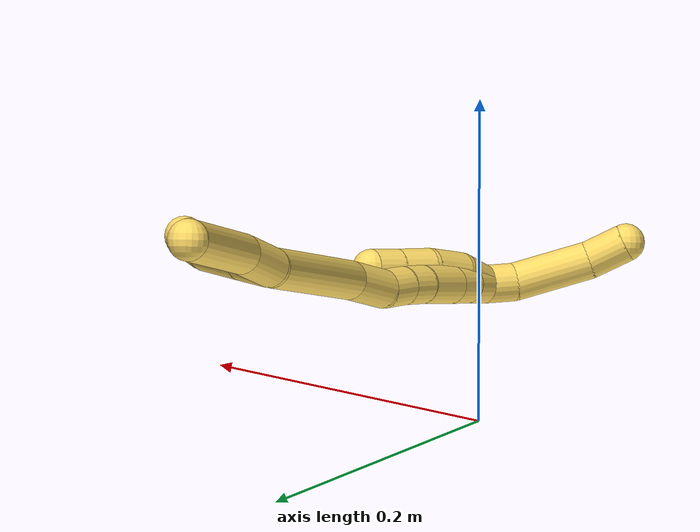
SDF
<sdf version="1.7">
 <world name="default">
  <model name="photoneo_s_sensor">
   <static>1</static>
   <pose>0 0 2 1.57079 1.57079 3.14159</pose>
   <link name="link">
    <inertial><mass>0.1</mass></inertial>
    <sensor name="sensor" type="depth">
     <update_rate>30</update_rate>
     <camera>
      <horizontal_fov>1.22</horizontal_fov>
      <image><width>1920</width><height>1200</height><format>B8G8R8</format></image>
      <clip><near>0.1</near><far>4</far></clip>
      <depth_camera><output>points</output></depth_camera>
     </camera>
     <plugin name="camera_plugin" filename="libgazebo_ros_depth_camera.so">
      <baseline>0.2</baseline>
      <alwaysOn>1</alwaysOn>
      <updateRate>0.0</updateRate>
      <cameraName>camera_ir</cameraName>
      <imageTopicName>/camera/color/image_raw</imageTopicName>
      <cameraInfoTopicName>/camera/color/camera_info</cameraInfoTopicName>
      <depthImageTopicName>/camera/depth/image_raw</depthImageTopicName>
      <depthImageCameraInfoTopicName>/camera/depth/camera_info</depthImageCameraInfoTopicName>
      <pointCloudTopicName>/camera/depth/points</pointCloudTopicName>
      <frameName>fr_optical</frameName>
      <pointCloudCutoff>0.1</pointCloudCutoff>
      <pointCloudCutoffMax>2.0</pointCloudCutoffMax>
      <distortionK1>0</distortionK1>
      <distortionK2>0</distortionK2>
      <distortionK3>0</distortionK3>
      <distortionT1>0</distortionT1>
      <distortionT2>0</distortionT2>
      <CxPrime>0</CxPrime>
      <Cx>0</Cx>
      <Cy>0</Cy>
      <focalLength>0</focalLength>
      <hackBaseline>0</hackBaseline>
     </plugin>
    </sensor>
   </link>
  </model>
  <model name="bin">
   <static>1</static>
   <link name="bottom">
    <collision name="collision-bottom">
     <pose>0 0 -0.01 0 -0 0</pose>
     <geometry><box><size>0.8 0.6 0.02</size></box></geometry>
     <surface>
      <friction><ode><mu>100</mu><mu2>100</mu2></ode></friction>
      <contact><collide_bitmask>65535</collide_bitmask></contact>
     </surface>
    </collision>
   </link>
   <link name="west_wall">
    <collision name="collision-west_wall">
     <pose>-0.41 0 0.1 0 -0 0</pose>
     <geometry><box><size>0.02 0.6 0.2</size></box></geometry>
     <surface>
      <friction><ode><mu>100</mu><mu2>100</mu2></ode></friction>
      <contact><collide_bitmask>65535</collide_bitmask></contact>
     </surface>
    </collision>
   </link>
   <link name="east_wall">
    <collision name="collision-east_wall">
     <pose>0.41 0 0.1 0 -0 0</pose>
     <geometry><box><size>0.02 0.6 0.2</size></box></geometry>
     <surface>
      <friction><ode><mu>100</mu><mu2>100</mu2></ode></friction>
      <contact><collide_bitmask>65535</collide_bitmask></contact>
     </surface>
    </collision>
   </link>
   <link name="south_wall">
    <collision name="collision-south_wall">
     <pose>0 -0.31 0.1 0 -0 0</pose>
     <geometry><box><size>0.8 0.02 0.2</size></box></geometry>
     <surface>
      <friction><ode><mu>100</mu><mu2>100</mu2></ode></friction>
      <contact><collide_bitmask>65535</collide_bitmask></contact>
     </surface>
    </collision>
   </link>
   <link name="north_wall">
    <collision name="collision-north_wall">
     <pose>0 0.31 0.1 0 -0 0</pose>
     <geometry><box><size>0.8 0.02 0.2</size></box></geometry>
     <surface>
      <friction><ode><mu>100</mu><mu2>100</mu2></ode></friction>
      <contact><collide_bitmask>65535</collide_bitmask></contact>
     </surface>
    </collision>
   </link>
  </model>
  <model name="5">
   <static>0</static>
   <link name="5">
    <collision name="collision-cylinder-e_1_2_8">
     <pose>-0.001874 0.017277 -0.003878 -1.79162 -0.105443 0.131669</pose>
     <geometry><cylinder><radius>0.0125</radius><length>0.035611</length></cylinder></geometry>
     <surface>
      <friction><ode><mu>1.16</mu><mu2>1.16</mu2><slip1>0</slip1><slip2>0</slip2></ode></friction>
      <contact><ode><kp>1e+06</kp><kd>1</kd><max_vel>0</max_vel><min_depth>0.001</min_depth></ode></contact>
     </surface>
    </collision>
    <visual name="visual-cylinder-e_1_2_8">
     <pose>-0.001874 0.017277 -0.003878 -1.79162 -0.105443 0.131669</pose>
     <geometry><cylinder><radius>0.0125</radius><length>0.035611</length></cylinder></geometry>
     <material><ambient>1 0.858824 0.4 1</ambient></material>
    </visual>
    <collision name="collision-cylinder-e_2_8_6">
     <pose>0.005883 0.090833 -0.011083 -1.62982 0.169197 -0.179437</pose>
     <geometry><cylinder><radius>0.0125</radius><length>0.114389</length></cylinder></geometry>
     <surface>
      <friction><ode><mu>1.16</mu><mu2>1.16</mu2><slip1>0</slip1><slip2>0</slip2></ode></friction>
      <contact><ode><kp>1e+06</kp><kd>1</kd><max_vel>0</max_vel><min_depth>0.001</min_depth></ode></contact>
     </surface>
    </collision>
    <visual name="visual-cylinder-e_2_8_6">
     <pose>0.005883 0.090833 -0.011083 -1.62982 0.169197 -0.179437</pose>
     <geometry><cylinder><radius>0.0125</radius><length>0.114389</length></cylinder></geometry>
     <material><ambient>1 0.858824 0.4 1</ambient></material>
    </visual>
    <collision name="collision-cylinder-e_1_2_9">
     <pose>-0.013783 -0.00959 -0.001881 1.76449 -0.954014 -1.12156</pose>
     <geometry><cylinder><radius>0.0125</radius><length>0.033792</length></cylinder></geometry>
     <surface>
      <friction><ode><mu>1.16</mu><mu2>1.16</mu2><slip1>0</slip1><slip2>0</slip2></ode></friction>
      <contact><ode><kp>1e+06</kp><kd>1</kd><max_vel>0</max_vel><min_depth>0.001</min_depth></ode></contact>
     </surface>
    </collision>
    <visual name="visual-cylinder-e_1_2_9">
     <pose>-0.013783 -0.00959 -0.001881 1.76449 -0.954014 -1.12156</pose>
     <geometry><cylinder><radius>0.0125</radius><length>0.033792</length></cylinder></geometry>
     <material><ambient>1 0.858824 0.4 1</ambient></material>
    </visual>
    <collision name="collision-cylinder-e_2_9_10">
     <pose>-0.04593 -0.030696 -0.006533 1.80688 -0.997969 -1.21019</pose>
     <geometry><cylinder><radius>0.0125</radius><length>0.043704</length></cylinder></geometry>
     <surface>
      <friction><ode><mu>1.16</mu><mu2>1.16</mu2><slip1>0</slip1><slip2>0</slip2></ode></friction>
      <contact><ode><kp>1e+06</kp><kd>1</kd><max_vel>0</max_vel><min_depth>0.001</min_depth></ode></contact>
     </surface>
    </collision>
    <visual name="visual-cylinder-e_2_9_10">
     <pose>-0.04593 -0.030696 -0.006533 1.80688 -0.997969 -1.21019</pose>
     <geometry><cylinder><radius>0.0125</radius><length>0.043704</length></cylinder></geometry>
     <material><ambient>1 0.858824 0.4 1</ambient></material>
    </visual>
    <collision name="collision-cylinder-e_3_10_5">
     <pose>-0.07375 -0.046293 -0.013833 2.40817 -0.998081 -1.91389</pose>
     <geometry><cylinder><radius>0.0125</radius><length>0.022504</length></cylinder></geometry>
     <surface>
      <friction><ode><mu>1.16</mu><mu2>1.16</mu2><slip1>0</slip1><slip2>0</slip2></ode></friction>
      <contact><ode><kp>1e+06</kp><kd>1</kd><max_vel>0</max_vel><min_depth>0.001</min_depth></ode></contact>
     </surface>
    </collision>
    <visual name="visual-cylinder-e_3_10_5">
     <pose>-0.07375 -0.046293 -0.013833 2.40817 -0.998081 -1.91389</pose>
     <geometry><cylinder><radius>0.0125</radius><length>0.022504</length></cylinder></geometry>
     <material><ambient>1 0.858824 0.4 1</ambient></material>
    </visual>
    <collision name="collision-cylinder-e_1_2_11">
     <pose>-0.006177 -0.071223 0.003193 1.52599 -0.086419 -0.082635</pose>
     <geometry><cylinder><radius>0.0125</radius><length>0.143122</length></cylinder></geometry>
     <surface>
      <friction><ode><mu>1.16</mu><mu2>1.16</mu2><slip1>0</slip1><slip2>0</slip2></ode></friction>
      <contact><ode><kp>1e+06</kp><kd>1</kd><max_vel>0</max_vel><min_depth>0.001</min_depth></ode></contact>
     </surface>
    </collision>
    <visual name="visual-cylinder-e_1_2_11">
     <pose>-0.006177 -0.071223 0.003193 1.52599 -0.086419 -0.082635</pose>
     <geometry><cylinder><radius>0.0125</radius><length>0.143122</length></cylinder></geometry>
     <material><ambient>1 0.858824 0.4 1</ambient></material>
    </visual>
    <collision name="collision-cylinder-e_2_11_12">
     <pose>-0.008265 -0.159995 0.008976 1.42429 0.226507 0.195749</pose>
     <geometry><cylinder><radius>0.0125</radius><length>0.03641</length></cylinder></geometry>
     <surface>
      <friction><ode><mu>1.16</mu><mu2>1.16</mu2><slip1>0</slip1><slip2>0</slip2></ode></friction>
      <contact><ode><kp>1e+06</kp><kd>1</kd><max_vel>0</max_vel><min_depth>0.001</min_depth></ode></contact>
     </surface>
    </collision>
    <visual name="visual-cylinder-e_2_11_12">
     <pose>-0.008265 -0.159995 0.008976 1.42429 0.226507 0.195749</pose>
     <geometry><cylinder><radius>0.0125</radius><length>0.03641</length></cylinder></geometry>
     <material><ambient>1 0.858824 0.4 1</ambient></material>
    </visual>
    <collision name="collision-cylinder-e_3_12_13">
     <pose>-0.001772 -0.187863 0.010381 1.68507 0.227509 0.254831</pose>
     <geometry><cylinder><radius>0.0125</radius><length>0.021323</length></cylinder></geometry>
     <surface>
      <friction><ode><mu>1.16</mu><mu2>1.16</mu2><slip1>0</slip1><slip2>0</slip2></ode></friction>
      <contact><ode><kp>1e+06</kp><kd>1</kd><max_vel>0</max_vel><min_depth>0.001</min_depth></ode></contact>
     </surface>
    </collision>
    <visual name="visual-cylinder-e_3_12_13">
     <pose>-0.001772 -0.187863 0.010381 1.68507 0.227509 0.254831</pose>
     <geometry><cylinder><radius>0.0125</radius><length>0.021323</length></cylinder></geometry>
     <material><ambient>1 0.858824 0.4 1</ambient></material>
    </visual>
    <collision name="collision-cylinder-e_4_13_14">
     <pose>0.002902 -0.208136 0.008668 1.62388 0.223787 0.235884</pose>
     <geometry><cylinder><radius>0.0125</radius><length>0.020444</length></cylinder></geometry>
     <surface>
      <friction><ode><mu>1.16</mu><mu2>1.16</mu2><slip1>0</slip1><slip2>0</slip2></ode></friction>
      <contact><ode><kp>1e+06</kp><kd>1</kd><max_vel>0</max_vel><min_depth>0.001</min_depth></ode></contact>
     </surface>
    </collision>
    <visual name="visual-cylinder-e_4_13_14">
     <pose>0.002902 -0.208136 0.008668 1.62388 0.223787 0.235884</pose>
     <geometry><cylinder><radius>0.0125</radius><length>0.020444</length></cylinder></geometry>
     <material><ambient>1 0.858824 0.4 1</ambient></material>
    </visual>
    <collision name="collision-cylinder-e_5_14_15">
     <pose>0.007573 -0.235555 0.007921 1.58326 0.136719 0.138429</pose>
     <geometry><cylinder><radius>0.0125</radius><length>0.035264</length></cylinder></geometry>
     <surface>
      <friction><ode><mu>1.16</mu><mu2>1.16</mu2><slip1>0</slip1><slip2>0</slip2></ode></friction>
      <contact><ode><kp>1e+06</kp><kd>1</kd><max_vel>0</max_vel><min_depth>0.001</min_depth></ode></contact>
     </surface>
    </collision>
    <visual name="visual-cylinder-e_5_14_15">
     <pose>0.007573 -0.235555 0.007921 1.58326 0.136719 0.138429</pose>
     <geometry><cylinder><radius>0.0125</radius><length>0.035264</length></cylinder></geometry>
     <material><ambient>1 0.858824 0.4 1</ambient></material>
    </visual>
    <collision name="collision-cylinder-e_6_15_16">
     <pose>0.011392 -0.263422 0.007497 1.59065 0.135292 0.137996</pose>
     <geometry><cylinder><radius>0.0125</radius><length>0.020998</length></cylinder></geometry>
     <surface>
      <friction><ode><mu>1.16</mu><mu2>1.16</mu2><slip1>0</slip1><slip2>0</slip2></ode></friction>
      <contact><ode><kp>1e+06</kp><kd>1</kd><max_vel>0</max_vel><min_depth>0.001</min_depth></ode></contact>
     </surface>
    </collision>
    <visual name="visual-cylinder-e_6_15_16">
     <pose>0.011392 -0.263422 0.007497 1.59065 0.135292 0.137996</pose>
     <geometry><cylinder><radius>0.0125</radius><length>0.020998</length></cylinder></geometry>
     <material><ambient>1 0.858824 0.4 1</ambient></material>
    </visual>
    <collision name="collision-cylinder-e_7_16_1">
     <pose>0.013925 -0.284987 0.007226 1.57656 0.099663 0.100238</pose>
     <geometry><cylinder><radius>0.0125</radius><length>0.022439</length></cylinder></geometry>
     <surface>
      <friction><ode><mu>1.16</mu><mu2>1.16</mu2><slip1>0</slip1><slip2>0</slip2></ode></friction>
      <contact><ode><kp>1e+06</kp><kd>1</kd><max_vel>0</max_vel><min_depth>0.001</min_depth></ode></contact>
     </surface>
    </collision>
    <visual name="visual-cylinder-e_7_16_1">
     <pose>0.013925 -0.284987 0.007226 1.57656 0.099663 0.100238</pose>
     <geometry><cylinder><radius>0.0125</radius><length>0.022439</length></cylinder></geometry>
     <material><ambient>1 0.858824 0.4 1</ambient></material>
    </visual>
    <collision name="collision-cylinder-e_1_1_17">
     <pose>0.012126 -0.283238 0.003156 -1.87163 -0.212356 0.287319</pose>
     <geometry><cylinder><radius>0.0125</radius><length>0.02766</length></cylinder></geometry>
     <surface>
      <friction><ode><mu>1.16</mu><mu2>1.16</mu2><slip1>0</slip1><slip2>0</slip2></ode></friction>
      <contact><ode><kp>1e+06</kp><kd>1</kd><max_vel>0</max_vel><min_depth>0.001</min_depth></ode></contact>
     </surface>
    </collision>
    <visual name="visual-cylinder-e_1_1_17">
     <pose>0.012126 -0.283238 0.003156 -1.87163 -0.212356 0.287319</pose>
     <geometry><cylinder><radius>0.0125</radius><length>0.02766</length></cylinder></geometry>
     <material><ambient>1 0.858824 0.4 1</ambient></material>
    </visual>
    <collision name="collision-cylinder-e_2_17_18">
     <pose>0.003783 -0.257316 -0.001971 -1.65673 -0.393959 0.428327</pose>
     <geometry><cylinder><radius>0.0125</radius><length>0.028283</length></cylinder></geometry>
     <surface>
      <friction><ode><mu>1.16</mu><mu2>1.16</mu2><slip1>0</slip1><slip2>0</slip2></ode></friction>
      <contact><ode><kp>1e+06</kp><kd>1</kd><max_vel>0</max_vel><min_depth>0.001</min_depth></ode></contact>
     </surface>
    </collision>
    <visual name="visual-cylinder-e_2_17_18">
     <pose>0.003783 -0.257316 -0.001971 -1.65673 -0.393959 0.428327</pose>
     <geometry><cylinder><radius>0.0125</radius><length>0.028283</length></cylinder></geometry>
     <material><ambient>1 0.858824 0.4 1</ambient></material>
    </visual>
    <collision name="collision-cylinder-e_3_18_19">
     <pose>-0.00834 -0.234369 -0.002534 -1.51469 -0.592158 0.56155</pose>
     <geometry><cylinder><radius>0.0125</radius><length>0.023989</length></cylinder></geometry>
     <surface>
      <friction><ode><mu>1.16</mu><mu2>1.16</mu2><slip1>0</slip1><slip2>0</slip2></ode></friction>
      <contact><ode><kp>1e+06</kp><kd>1</kd><max_vel>0</max_vel><min_depth>0.001</min_depth></ode></contact>
     </surface>
    </collision>
    <visual name="visual-cylinder-e_3_18_19">
     <pose>-0.00834 -0.234369 -0.002534 -1.51469 -0.592158 0.56155</pose>
     <geometry><cylinder><radius>0.0125</radius><length>0.023989</length></cylinder></geometry>
     <material><ambient>1 0.858824 0.4 1</ambient></material>
    </visual>
    <collision name="collision-cylinder-e_4_19_4">
     <pose>-0.020516 -0.216032 -0.001717 -1.54008 -0.577972 0.561405</pose>
     <geometry><cylinder><radius>0.0125</radius><length>0.020067</length></cylinder></geometry>
     <surface>
      <friction><ode><mu>1.16</mu><mu2>1.16</mu2><slip1>0</slip1><slip2>0</slip2></ode></friction>
      <contact><ode><kp>1e+06</kp><kd>1</kd><max_vel>0</max_vel><min_depth>0.001</min_depth></ode></contact>
     </surface>
    </collision>
    <visual name="visual-cylinder-e_4_19_4">
     <pose>-0.020516 -0.216032 -0.001717 -1.54008 -0.577972 0.561405</pose>
     <geometry><cylinder><radius>0.0125</radius><length>0.020067</length></cylinder></geometry>
     <material><ambient>1 0.858824 0.4 1</ambient></material>
    </visual>
    <collision name="collision-cylinder-e_1_1_20">
     <pose>0.022979 -0.303001 0.00615 1.7174 0.853454 0.969612</pose>
     <geometry><cylinder><radius>0.0125</radius><length>0.021067</length></cylinder></geometry>
     <surface>
      <friction><ode><mu>1.16</mu><mu2>1.16</mu2><slip1>0</slip1><slip2>0</slip2></ode></friction>
      <contact><ode><kp>1e+06</kp><kd>1</kd><max_vel>0</max_vel><min_depth>0.001</min_depth></ode></contact>
     </surface>
    </collision>
    <visual name="visual-cylinder-e_1_1_20">
     <pose>0.022979 -0.303001 0.00615 1.7174 0.853454 0.969612</pose>
     <geometry><cylinder><radius>0.0125</radius><length>0.021067</length></cylinder></geometry>
     <material><ambient>1 0.858824 0.4 1</ambient></material>
    </visual>
    <collision name="collision-cylinder-e_2_20_21">
     <pose>0.051998 -0.322754 -0.00261 2.11164 0.950772 1.4762</pose>
     <geometry><cylinder><radius>0.0125</radius><length>0.051806</length></cylinder></geometry>
     <surface>
      <friction><ode><mu>1.16</mu><mu2>1.16</mu2><slip1>0</slip1><slip2>0</slip2></ode></friction>
      <contact><ode><kp>1e+06</kp><kd>1</kd><max_vel>0</max_vel><min_depth>0.001</min_depth></ode></contact>
     </surface>
    </collision>
    <visual name="visual-cylinder-e_2_20_21">
     <pose>0.051998 -0.322754 -0.00261 2.11164 0.950772 1.4762</pose>
     <geometry><cylinder><radius>0.0125</radius><length>0.051806</length></cylinder></geometry>
     <material><ambient>1 0.858824 0.4 1</ambient></material>
    </visual>
    <collision name="collision-cylinder-e_3_21_3">
     <pose>0.084901 -0.338402 -0.016416 2.71598 1.05838 2.43376</pose>
     <geometry><cylinder><radius>0.0125</radius><length>0.027127</length></cylinder></geometry>
     <surface>
      <friction><ode><mu>1.16</mu><mu2>1.16</mu2><slip1>0</slip1><slip2>0</slip2></ode></friction>
      <contact><ode><kp>1e+06</kp><kd>1</kd><max_vel>0</max_vel><min_depth>0.001</min_depth></ode></contact>
     </surface>
    </collision>
    <visual name="visual-cylinder-e_3_21_3">
     <pose>0.084901 -0.338402 -0.016416 2.71598 1.05838 2.43376</pose>
     <geometry><cylinder><radius>0.0125</radius><length>0.027127</length></cylinder></geometry>
     <material><ambient>1 0.858824 0.4 1</ambient></material>
    </visual>
    <collision name="collision-sphere-3">
     <pose>0.096722 -0.341148 -0.022473 0 -0 0</pose>
     <geometry><sphere><radius>0.0125</radius></sphere></geometry>
     <surface>
      <friction><ode><mu>1.16</mu><mu2>1.16</mu2><slip1>0</slip1><slip2>0</slip2></ode></friction>
      <contact><ode><kp>1e+06</kp><kd>1</kd><max_vel>0</max_vel><min_depth>0.001</min_depth></ode></contact>
     </surface>
    </collision>
    <visual name="visual-sphere-3">
     <pose>0.096722 -0.341148 -0.022473 0 -0 0</pose>
     <geometry><sphere><radius>0.0125</radius></sphere></geometry>
     <material><ambient>1 0.858824 0.4 1</ambient></material>
    </visual>
    <collision name="collision-sphere-21">
     <pose>0.073079 -0.335657 -0.010359 0 -0 0</pose>
     <geometry><sphere><radius>0.0125</radius></sphere></geometry>
     <surface>
      <friction><ode><mu>1.16</mu><mu2>1.16</mu2><slip1>0</slip1><slip2>0</slip2></ode></friction>
      <contact><ode><kp>1e+06</kp><kd>1</kd><max_vel>0</max_vel><min_depth>0.001</min_depth></ode></contact>
     </surface>
    </collision>
    <visual name="visual-sphere-21">
     <pose>0.073079 -0.335657 -0.010359 0 -0 0</pose>
     <geometry><sphere><radius>0.0125</radius></sphere></geometry>
     <material><ambient>1 0.858824 0.4 1</ambient></material>
    </visual>
    <collision name="collision-sphere-20">
     <pose>0.030916 -0.309851 0.005139 0 -0 0</pose>
     <geometry><sphere><radius>0.0125</radius></sphere></geometry>
     <surface>
      <friction><ode><mu>1.16</mu><mu2>1.16</mu2><slip1>0</slip1><slip2>0</slip2></ode></friction>
      <contact><ode><kp>1e+06</kp><kd>1</kd><max_vel>0</max_vel><min_depth>0.001</min_depth></ode></contact>
     </surface>
    </collision>
    <visual name="visual-sphere-20">
     <pose>0.030916 -0.309851 0.005139 0 -0 0</pose>
     <geometry><sphere><radius>0.0125</radius></sphere></geometry>
     <material><ambient>1 0.858824 0.4 1</ambient></material>
    </visual>
    <collision name="collision-sphere-4">
     <pose>-0.025998 -0.207632 -0.001459 0 -0 0</pose>
     <geometry><sphere><radius>0.0125</radius></sphere></geometry>
     <surface>
      <friction><ode><mu>1.16</mu><mu2>1.16</mu2><slip1>0</slip1><slip2>0</slip2></ode></friction>
      <contact><ode><kp>1e+06</kp><kd>1</kd><max_vel>0</max_vel><min_depth>0.001</min_depth></ode></contact>
     </surface>
    </collision>
    <visual name="visual-sphere-4">
     <pose>-0.025998 -0.207632 -0.001459 0 -0 0</pose>
     <geometry><sphere><radius>0.0125</radius></sphere></geometry>
     <material><ambient>1 0.858824 0.4 1</ambient></material>
    </visual>
    <collision name="collision-sphere-5">
     <pose>-0.083206 -0.050375 -0.018363 0 -0 0</pose>
     <geometry><sphere><radius>0.0125</radius></sphere></geometry>
     <surface>
      <friction><ode><mu>1.16</mu><mu2>1.16</mu2><slip1>0</slip1><slip2>0</slip2></ode></friction>
      <contact><ode><kp>1e+06</kp><kd>1</kd><max_vel>0</max_vel><min_depth>0.001</min_depth></ode></contact>
     </surface>
    </collision>
    <visual name="visual-sphere-5">
     <pose>-0.083206 -0.050375 -0.018363 0 -0 0</pose>
     <geometry><sphere><radius>0.0125</radius></sphere></geometry>
     <material><ambient>1 0.858824 0.4 1</ambient></material>
    </visual>
    <collision name="collision-sphere-10">
     <pose>-0.064293 -0.042211 -0.009303 0 -0 0</pose>
     <geometry><sphere><radius>0.0125</radius></sphere></geometry>
     <surface>
      <friction><ode><mu>1.16</mu><mu2>1.16</mu2><slip1>0</slip1><slip2>0</slip2></ode></friction>
      <contact><ode><kp>1e+06</kp><kd>1</kd><max_vel>0</max_vel><min_depth>0.001</min_depth></ode></contact>
     </surface>
    </collision>
    <visual name="visual-sphere-10">
     <pose>-0.064293 -0.042211 -0.009303 0 -0 0</pose>
     <geometry><sphere><radius>0.0125</radius></sphere></geometry>
     <material><ambient>1 0.858824 0.4 1</ambient></material>
    </visual>
    <collision name="collision-sphere-6">
     <pose>0.015514 0.147112 -0.014409 0 -0 0</pose>
     <geometry><sphere><radius>0.0125</radius></sphere></geometry>
     <surface>
      <friction><ode><mu>1.16</mu><mu2>1.16</mu2><slip1>0</slip1><slip2>0</slip2></ode></friction>
      <contact><ode><kp>1e+06</kp><kd>1</kd><max_vel>0</max_vel><min_depth>0.001</min_depth></ode></contact>
     </surface>
    </collision>
    <visual name="visual-sphere-6">
     <pose>0.015514 0.147112 -0.014409 0 -0 0</pose>
     <geometry><sphere><radius>0.0125</radius></sphere></geometry>
     <material><ambient>1 0.858824 0.4 1</ambient></material>
    </visual>
    <collision name="collision-sphere-9">
     <pose>-0.027566 -0.01918 -0.003762 0 -0 0</pose>
     <geometry><sphere><radius>0.0125</radius></sphere></geometry>
     <surface>
      <friction><ode><mu>1.16</mu><mu2>1.16</mu2><slip1>0</slip1><slip2>0</slip2></ode></friction>
      <contact><ode><kp>1e+06</kp><kd>1</kd><max_vel>0</max_vel><min_depth>0.001</min_depth></ode></contact>
     </surface>
    </collision>
    <visual name="visual-sphere-9">
     <pose>-0.027566 -0.01918 -0.003762 0 -0 0</pose>
     <geometry><sphere><radius>0.0125</radius></sphere></geometry>
     <material><ambient>1 0.858824 0.4 1</ambient></material>
    </visual>
    <collision name="collision-sphere-2">
     <geometry><sphere><radius>0.0125</radius></sphere></geometry>
     <surface>
      <friction><ode><mu>1.16</mu><mu2>1.16</mu2><slip1>0</slip1><slip2>0</slip2></ode></friction>
      <contact><ode><kp>1e+06</kp><kd>1</kd><max_vel>0</max_vel><min_depth>0.001</min_depth></ode></contact>
     </surface>
    </collision>
    <visual name="visual-sphere-2">
     <geometry><sphere><radius>0.0125</radius></sphere></geometry>
     <material><ambient>1 0.858824 0.4 1</ambient></material>
    </visual>
    <collision name="collision-sphere-19">
     <pose>-0.015035 -0.224432 -0.001975 0 -0 0</pose>
     <geometry><sphere><radius>0.0125</radius></sphere></geometry>
     <surface>
      <friction><ode><mu>1.16</mu><mu2>1.16</mu2><slip1>0</slip1><slip2>0</slip2></ode></friction>
      <contact><ode><kp>1e+06</kp><kd>1</kd><max_vel>0</max_vel><min_depth>0.001</min_depth></ode></contact>
     </surface>
    </collision>
    <visual name="visual-sphere-19">
     <pose>-0.015035 -0.224432 -0.001975 0 -0 0</pose>
     <geometry><sphere><radius>0.0125</radius></sphere></geometry>
     <material><ambient>1 0.858824 0.4 1</ambient></material>
    </visual>
    <collision name="collision-sphere-8">
     <pose>-0.003748 0.034553 -0.007757 0 -0 0</pose>
     <geometry><sphere><radius>0.0125</radius></sphere></geometry>
     <surface>
      <friction><ode><mu>1.16</mu><mu2>1.16</mu2><slip1>0</slip1><slip2>0</slip2></ode></friction>
      <contact><ode><kp>1e+06</kp><kd>1</kd><max_vel>0</max_vel><min_depth>0.001</min_depth></ode></contact>
     </surface>
    </collision>
    <visual name="visual-sphere-8">
     <pose>-0.003748 0.034553 -0.007757 0 -0 0</pose>
     <geometry><sphere><radius>0.0125</radius></sphere></geometry>
     <material><ambient>1 0.858824 0.4 1</ambient></material>
    </visual>
    <collision name="collision-sphere-11">
     <pose>-0.012353 -0.142445 0.006386 0 -0 0</pose>
     <geometry><sphere><radius>0.0125</radius></sphere></geometry>
     <surface>
      <friction><ode><mu>1.16</mu><mu2>1.16</mu2><slip1>0</slip1><slip2>0</slip2></ode></friction>
      <contact><ode><kp>1e+06</kp><kd>1</kd><max_vel>0</max_vel><min_depth>0.001</min_depth></ode></contact>
     </surface>
    </collision>
    <visual name="visual-sphere-11">
     <pose>-0.012353 -0.142445 0.006386 0 -0 0</pose>
     <geometry><sphere><radius>0.0125</radius></sphere></geometry>
     <material><ambient>1 0.858824 0.4 1</ambient></material>
    </visual>
    <collision name="collision-sphere-12">
     <pose>-0.004176 -0.177545 0.011565 0 -0 0</pose>
     <geometry><sphere><radius>0.0125</radius></sphere></geometry>
     <surface>
      <friction><ode><mu>1.16</mu><mu2>1.16</mu2><slip1>0</slip1><slip2>0</slip2></ode></friction>
      <contact><ode><kp>1e+06</kp><kd>1</kd><max_vel>0</max_vel><min_depth>0.001</min_depth></ode></contact>
     </surface>
    </collision>
    <visual name="visual-sphere-12">
     <pose>-0.004176 -0.177545 0.011565 0 -0 0</pose>
     <geometry><sphere><radius>0.0125</radius></sphere></geometry>
     <material><ambient>1 0.858824 0.4 1</ambient></material>
    </visual>
    <collision name="collision-sphere-13">
     <pose>0.000633 -0.198182 0.009197 0 -0 0</pose>
     <geometry><sphere><radius>0.0125</radius></sphere></geometry>
     <surface>
      <friction><ode><mu>1.16</mu><mu2>1.16</mu2><slip1>0</slip1><slip2>0</slip2></ode></friction>
      <contact><ode><kp>1e+06</kp><kd>1</kd><max_vel>0</max_vel><min_depth>0.001</min_depth></ode></contact>
     </surface>
    </collision>
    <visual name="visual-sphere-13">
     <pose>0.000633 -0.198182 0.009197 0 -0 0</pose>
     <geometry><sphere><radius>0.0125</radius></sphere></geometry>
     <material><ambient>1 0.858824 0.4 1</ambient></material>
    </visual>
    <collision name="collision-sphere-14">
     <pose>0.00517 -0.218089 0.008139 0 -0 0</pose>
     <geometry><sphere><radius>0.0125</radius></sphere></geometry>
     <surface>
      <friction><ode><mu>1.16</mu><mu2>1.16</mu2><slip1>0</slip1><slip2>0</slip2></ode></friction>
      <contact><ode><kp>1e+06</kp><kd>1</kd><max_vel>0</max_vel><min_depth>0.001</min_depth></ode></contact>
     </surface>
    </collision>
    <visual name="visual-sphere-14">
     <pose>0.00517 -0.218089 0.008139 0 -0 0</pose>
     <geometry><sphere><radius>0.0125</radius></sphere></geometry>
     <material><ambient>1 0.858824 0.4 1</ambient></material>
    </visual>
    <collision name="collision-sphere-15">
     <pose>0.009976 -0.253021 0.007704 0 -0 0</pose>
     <geometry><sphere><radius>0.0125</radius></sphere></geometry>
     <surface>
      <friction><ode><mu>1.16</mu><mu2>1.16</mu2><slip1>0</slip1><slip2>0</slip2></ode></friction>
      <contact><ode><kp>1e+06</kp><kd>1</kd><max_vel>0</max_vel><min_depth>0.001</min_depth></ode></contact>
     </surface>
    </collision>
    <visual name="visual-sphere-15">
     <pose>0.009976 -0.253021 0.007704 0 -0 0</pose>
     <geometry><sphere><radius>0.0125</radius></sphere></geometry>
     <material><ambient>1 0.858824 0.4 1</ambient></material>
    </visual>
    <collision name="collision-sphere-16">
     <pose>0.012809 -0.273823 0.007291 0 -0 0</pose>
     <geometry><sphere><radius>0.0125</radius></sphere></geometry>
     <surface>
      <friction><ode><mu>1.16</mu><mu2>1.16</mu2><slip1>0</slip1><slip2>0</slip2></ode></friction>
      <contact><ode><kp>1e+06</kp><kd>1</kd><max_vel>0</max_vel><min_depth>0.001</min_depth></ode></contact>
     </surface>
    </collision>
    <visual name="visual-sphere-16">
     <pose>0.012809 -0.273823 0.007291 0 -0 0</pose>
     <geometry><sphere><radius>0.0125</radius></sphere></geometry>
     <material><ambient>1 0.858824 0.4 1</ambient></material>
    </visual>
    <collision name="collision-sphere-1">
     <pose>0.015041 -0.29615 0.007162 0 -0 0</pose>
     <geometry><sphere><radius>0.0125</radius></sphere></geometry>
     <surface>
      <friction><ode><mu>1.16</mu><mu2>1.16</mu2><slip1>0</slip1><slip2>0</slip2></ode></friction>
      <contact><ode><kp>1e+06</kp><kd>1</kd><max_vel>0</max_vel><min_depth>0.001</min_depth></ode></contact>
     </surface>
    </collision>
    <visual name="visual-sphere-1">
     <pose>0.015041 -0.29615 0.007162 0 -0 0</pose>
     <geometry><sphere><radius>0.0125</radius></sphere></geometry>
     <material><ambient>1 0.858824 0.4 1</ambient></material>
    </visual>
    <collision name="collision-sphere-18">
     <pose>-0.001645 -0.244305 -0.003092 0 -0 0</pose>
     <geometry><sphere><radius>0.0125</radius></sphere></geometry>
     <surface>
      <friction><ode><mu>1.16</mu><mu2>1.16</mu2><slip1>0</slip1><slip2>0</slip2></ode></friction>
      <contact><ode><kp>1e+06</kp><kd>1</kd><max_vel>0</max_vel><min_depth>0.001</min_depth></ode></contact>
     </surface>
    </collision>
    <visual name="visual-sphere-18">
     <pose>-0.001645 -0.244305 -0.003092 0 -0 0</pose>
     <geometry><sphere><radius>0.0125</radius></sphere></geometry>
     <material><ambient>1 0.858824 0.4 1</ambient></material>
    </visual>
    <collision name="collision-sphere-17">
     <pose>0.009211 -0.270326 -0.00085 0 -0 0</pose>
     <geometry><sphere><radius>0.0125</radius></sphere></geometry>
     <surface>
      <friction><ode><mu>1.16</mu><mu2>1.16</mu2><slip1>0</slip1><slip2>0</slip2></ode></friction>
      <contact><ode><kp>1e+06</kp><kd>1</kd><max_vel>0</max_vel><min_depth>0.001</min_depth></ode></contact>
     </surface>
    </collision>
    <visual name="visual-sphere-17">
     <pose>0.009211 -0.270326 -0.00085 0 -0 0</pose>
     <geometry><sphere><radius>0.0125</radius></sphere></geometry>
     <material><ambient>1 0.858824 0.4 1</ambient></material>
    </visual>
    <inertial>
     <pose>0.001921 -0.124757 -0.001066 0 -0 0</pose>
     <mass>0.75</mass>
     <inertia>
      <ixx>0.00037</ixx>
      <ixy>0</ixy>
      <ixz>0</ixz>
      <iyy>-1.4e-05</iyy>
      <iyz>0</iyz>
      <izz>0.000135</izz>
     </inertia>
    </inertial>
   </link>
   <pose>0.106604 0.066533 0.093549 2.88354 -0.08632 -2.9068</pose>
  </model>
 </world>
</sdf>
